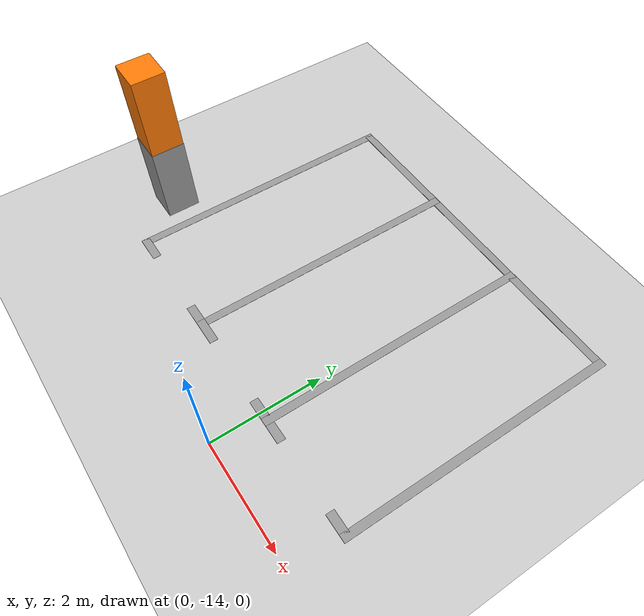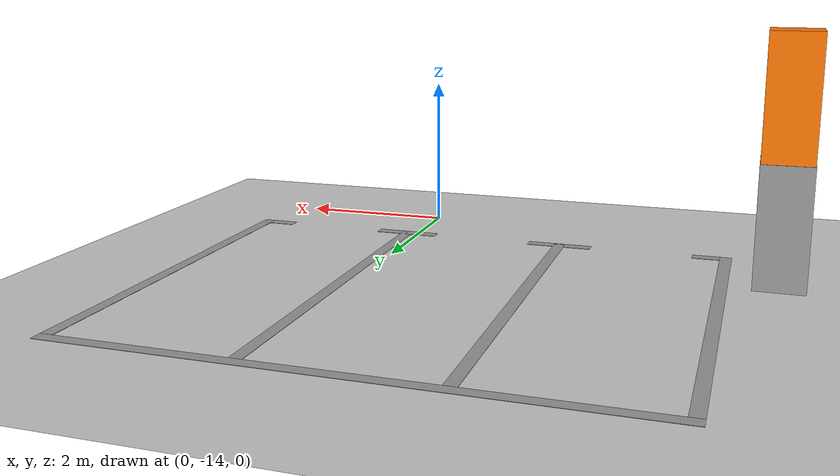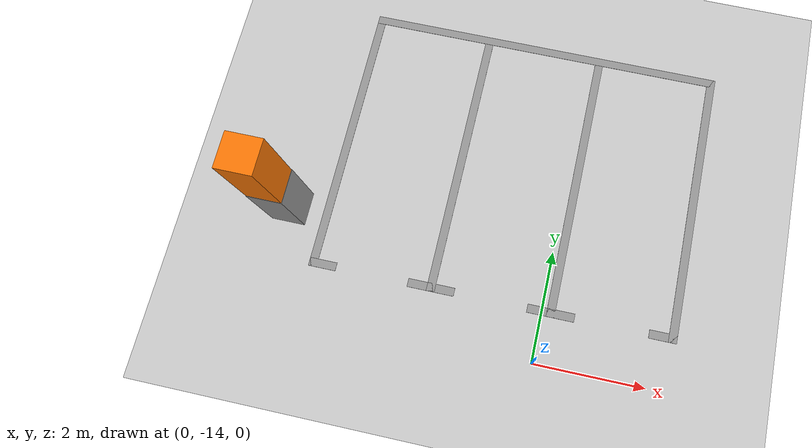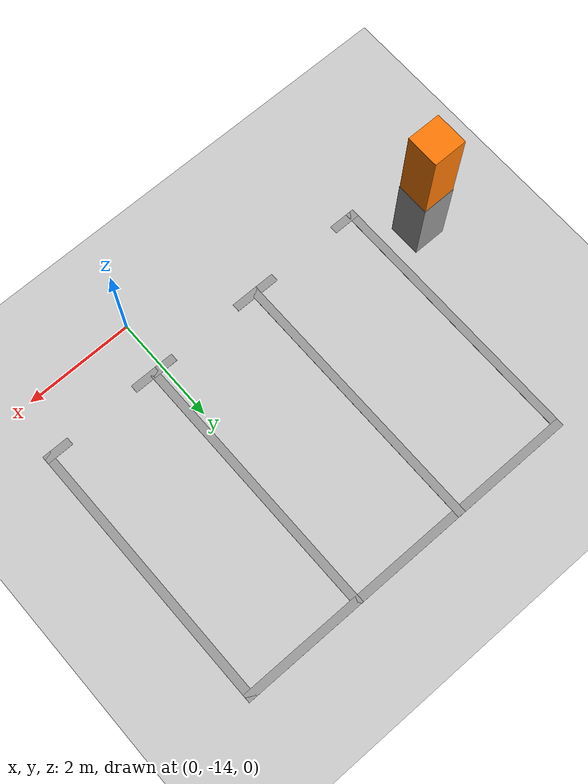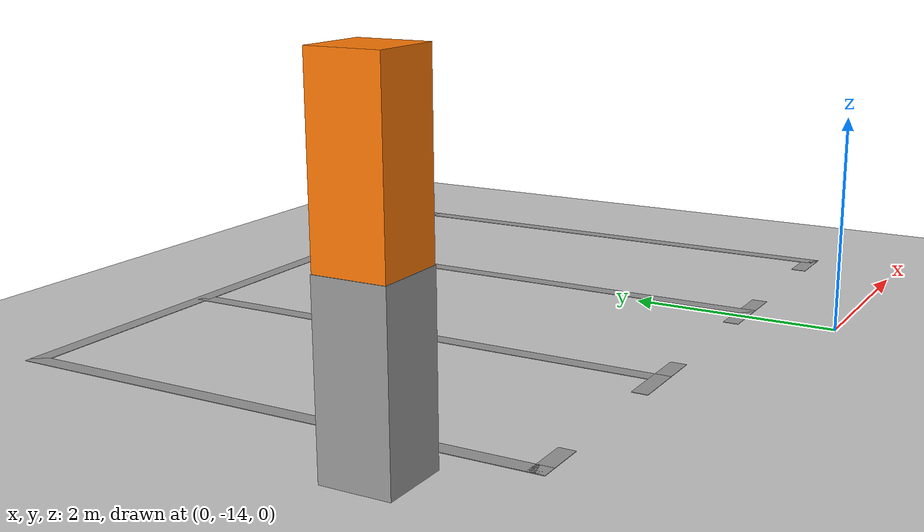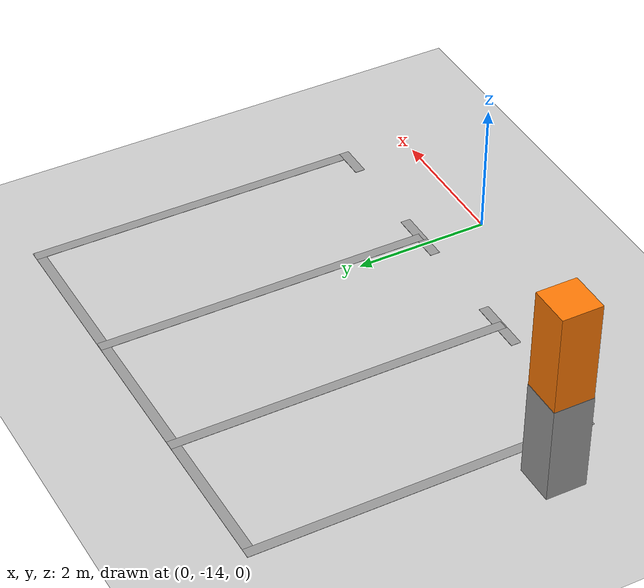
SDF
<sdf version="1.7">
 <world name="default">
  <model name="ground_plane">
   <static>1</static>
   <link name="link">
    <collision name="collision">
     <geometry><plane><normal>0 0 1</normal><size>100 100</size></plane></geometry>
     <surface><friction><ode><mu>100</mu><mu2>50</mu2></ode></friction></surface>
    </collision>
    <visual name="visual">
     <cast_shadows>0</cast_shadows>
     <geometry><plane><normal>0 0 1</normal><size>100 100</size></plane></geometry>
     <material>
      <script><uri>file://media/materials/scripts/gazebo.material</uri><name>Gazebo/Grey</name></script>
     </material>
    </visual>
   </link>
  </model>
  <model name="carport1_3_clone_clone_3">
   <pose>-1.36297 -8.8583 0 0 -0 0</pose>
   <link name="Wall_105">
    <collision name="Wall_105_Collision">
     <geometry><box><size>0.61 0.6 1.5</size></box></geometry>
     <pose>0 0 0.75 0 -0 0</pose>
    </collision>
    <visual name="Wall_105_Visual">
     <pose>0 0 0.75 0 -0 0</pose>
     <geometry><box><size>0.61 0.6 1.5</size></box></geometry>
     <material>
      <script><uri>file://media/materials/scripts/gazebo.material</uri><name>Gazebo/Grey</name></script>
      <ambient>1 1 1 1</ambient>
     </material>
     <meta><layer>0</layer></meta>
    </visual>
    <pose>-3.47407 -3.2865 0 0 -0 0</pose>
   </link>
   <link name="Wall_116">
    <collision name="Wall_116_Collision">
     <geometry><box><size>5.1 0.15 0.005</size></box></geometry>
     <pose>0 0 0.0025 0 -0 0</pose>
    </collision>
    <visual name="Wall_116_Visual">
     <pose>0 0 0.0025 0 -0 0</pose>
     <geometry><box><size>5.1 0.15 0.005</size></box></geometry>
     <material>
      <script><uri>file://media/materials/scripts/gazebo.material</uri><name>Gazebo/Grey</name></script>
      <ambient>1 1 1 1</ambient>
     </material>
     <meta><layer>0</layer></meta>
    </visual>
    <pose>-2.82307 -1.7385 0 0 -0 1.5708</pose>
   </link>
   <link name="Wall_124">
    <collision name="Wall_124_Collision">
     <geometry><box><size>5.1 0.15 0.005</size></box></geometry>
     <pose>0 0 0.0025 0 -0 0</pose>
    </collision>
    <visual name="Wall_124_Visual">
     <pose>0 0 0.0025 0 -0 0</pose>
     <geometry><box><size>5.1 0.15 0.005</size></box></geometry>
     <material>
      <script><uri>file://media/materials/scripts/gazebo.material</uri><name>Gazebo/Grey</name></script>
      <ambient>1 1 1 1</ambient>
     </material>
     <meta><layer>0</layer></meta>
    </visual>
    <pose>3.70393 -1.7305 0 0 -0 1.5708</pose>
   </link>
   <link name="Wall_146">
    <collision name="Wall_146_Collision">
     <geometry><box><size>6.67711 0.15 0.005</size></box></geometry>
     <pose>0 0 0.0025 0 -0 0</pose>
    </collision>
    <visual name="Wall_146_Visual">
     <pose>0 0 0.0025 0 -0 0</pose>
     <geometry><box><size>6.67711 0.15 0.005</size></box></geometry>
     <material>
      <script><uri>file://media/materials/scripts/gazebo.material</uri><name>Gazebo/Grey</name></script>
      <ambient>1 1 1 1</ambient>
     </material>
     <meta><layer>0</layer></meta>
    </visual>
    <pose>0.440428 0.7405 0 0 -0 0.001226</pose>
   </link>
   <link name="Wall_168">
    <collision name="Wall_168_Collision">
     <geometry><box><size>5.1 0.15 0.005</size></box></geometry>
     <pose>0 0 0.0025 0 -0 0</pose>
    </collision>
    <visual name="Wall_168_Visual">
     <pose>0 0 0.0025 0 -0 0</pose>
     <geometry><box><size>5.1 0.15 0.005</size></box></geometry>
     <material>
      <script><uri>file://media/materials/scripts/gazebo.material</uri><name>Gazebo/Grey</name></script>
      <ambient>1 1 1 1</ambient>
     </material>
     <meta><layer>0</layer></meta>
    </visual>
    <pose>-0.64827 -1.73839 0 0 -0 1.57088</pose>
   </link>
   <link name="Wall_173">
    <collision name="Wall_173_Collision">
     <geometry><box><size>5.1 0.15 0.005</size></box></geometry>
     <pose>0 0 0.0025 0 -0 0</pose>
    </collision>
    <visual name="Wall_173_Visual">
     <pose>0 0 0.0025 0 -0 0</pose>
     <geometry><box><size>5.1 0.15 0.005</size></box></geometry>
     <material>
      <script><uri>file://media/materials/scripts/gazebo.material</uri><name>Gazebo/Grey</name></script>
      <ambient>1 1 1 1</ambient>
     </material>
     <meta><layer>0</layer></meta>
    </visual>
    <pose>1.52673 -1.73839 0 0 -0 1.57088</pose>
   </link>
   <link name="Wall_177">
    <collision name="Wall_177_Collision">
     <geometry><box><size>0.6 0.59 3</size></box></geometry>
     <pose>0 0 1.5 0 -0 0</pose>
    </collision>
    <visual name="Wall_177_Visual">
     <pose>0 0 1.5 0 -0 0</pose>
     <geometry><box><size>0.6 0.59 3</size></box></geometry>
     <material>
      <script><uri>file://media/materials/scripts/gazebo.material</uri><name>Gazebo/Grey</name></script>
      <ambient>0.996078 0.47451 0.0196078 1</ambient>
     </material>
     <meta><layer>0</layer></meta>
    </visual>
    <pose>-3.47407 -3.2865 0 0 -0 0</pose>
   </link>
   <link name="Wall_179">
    <collision name="Wall_179_Collision">
     <geometry><box><size>0.5 0.15 0.005</size></box></geometry>
     <pose>0 0 0.0025 0 -0 0</pose>
    </collision>
    <visual name="Wall_179_Visual">
     <pose>0 0 0.0025 0 -0 0</pose>
     <geometry><box><size>0.5 0.15 0.005</size></box></geometry>
     <material>
      <script><uri>file://media/materials/scripts/gazebo.material</uri><name>Gazebo/Grey</name></script>
      <ambient>1 1 1 1</ambient>
     </material>
     <meta><layer>0</layer></meta>
    </visual>
    <pose>-2.64807 -4.2135 0 0 -0 0</pose>
   </link>
   <link name="Wall_181">
    <collision name="Wall_181_Collision">
     <geometry><box><size>0.5 0.15 0.005</size></box></geometry>
     <pose>0 0 0.0025 0 -0 0</pose>
    </collision>
    <visual name="Wall_181_Visual">
     <pose>0 0 0.0025 0 -0 0</pose>
     <geometry><box><size>0.5 0.15 0.005</size></box></geometry>
     <material>
      <script><uri>file://media/materials/scripts/gazebo.material</uri><name>Gazebo/Grey</name></script>
      <ambient>1 1 1 1</ambient>
     </material>
     <meta><layer>0</layer></meta>
    </visual>
    <pose>-0.823072 -4.2135 0 0 -0 3.14159</pose>
   </link>
   <link name="Wall_183">
    <collision name="Wall_183_Collision">
     <geometry><box><size>0.5 0.15 0.005</size></box></geometry>
     <pose>0 0 0.0025 0 -0 0</pose>
    </collision>
    <visual name="Wall_183_Visual">
     <pose>0 0 0.0025 0 -0 0</pose>
     <geometry><box><size>0.5 0.15 0.005</size></box></geometry>
     <material>
      <script><uri>file://media/materials/scripts/gazebo.material</uri><name>Gazebo/Grey</name></script>
      <ambient>1 1 1 1</ambient>
     </material>
     <meta><layer>0</layer></meta>
    </visual>
    <pose>-0.473072 -4.2135 0 0 -0 0</pose>
   </link>
   <link name="Wall_185">
    <collision name="Wall_185_Collision">
     <geometry><box><size>0.5 0.15 0.005</size></box></geometry>
     <pose>0 0 0.0025 0 -0 0</pose>
    </collision>
    <visual name="Wall_185_Visual">
     <pose>0 0 0.0025 0 -0 0</pose>
     <geometry><box><size>0.5 0.15 0.005</size></box></geometry>
     <material>
      <script><uri>file://media/materials/scripts/gazebo.material</uri><name>Gazebo/Grey</name></script>
      <ambient>1 1 1 1</ambient>
     </material>
     <meta><layer>0</layer></meta>
    </visual>
    <pose>1.35193 -4.2135 0 0 -0 3.14159</pose>
   </link>
   <link name="Wall_187">
    <collision name="Wall_187_Collision">
     <geometry><box><size>0.5 0.15 0.005</size></box></geometry>
     <pose>0 0 0.0025 0 -0 0</pose>
    </collision>
    <visual name="Wall_187_Visual">
     <pose>0 0 0.0025 0 -0 0</pose>
     <geometry><box><size>0.5 0.15 0.005</size></box></geometry>
     <material>
      <script><uri>file://media/materials/scripts/gazebo.material</uri><name>Gazebo/Grey</name></script>
      <ambient>1 1 1 1</ambient>
     </material>
     <meta><layer>0</layer></meta>
    </visual>
    <pose>1.70193 -4.2135 0 0 -0 0</pose>
   </link>
   <link name="Wall_189">
    <collision name="Wall_189_Collision">
     <geometry><box><size>0.5 0.15 0.005</size></box></geometry>
     <pose>0 0 0.0025 0 -0 0</pose>
    </collision>
    <visual name="Wall_189_Visual">
     <pose>0 0 0.0025 0 -0 0</pose>
     <geometry><box><size>0.5 0.15 0.005</size></box></geometry>
     <material>
      <script><uri>file://media/materials/scripts/gazebo.material</uri><name>Gazebo/Grey</name></script>
      <ambient>1 1 1 1</ambient>
     </material>
     <meta><layer>0</layer></meta>
    </visual>
    <pose>3.52893 -4.2055 0 0 -0 3.14159</pose>
   </link>
   <static>1</static>
  </model>
 </world>
</sdf>
